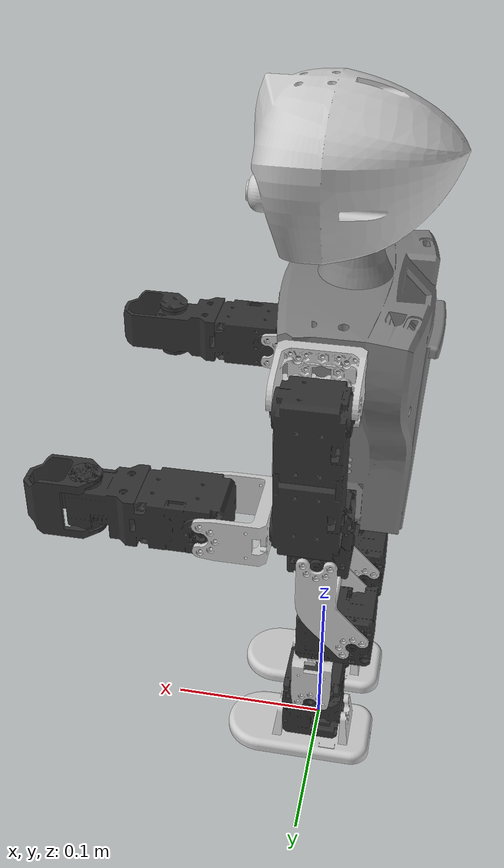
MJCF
<mujoco model="mh5_robot">
  <compiler angle="radian" meshdir="meshes/"/>

  <asset>
    <mesh name="chest_revH" content_type="model/stl" file="chest_revH.stl"/>
    <mesh name="2XL430_1_idle_revC" content_type="model/stl" file="2XL430_1_idle_revC.stl"/>
    <mesh name="head_revH" content_type="model/stl" file="head_revH.stl"/>
    <mesh name="frame04_revE" content_type="model/stl" file="frame04_revE.stl"/>
    <mesh name="upper_arm" content_type="model/stl" file="upper_arm.stl"/>
    <mesh name="frame02_revC" content_type="model/stl" file="frame02_revC.stl"/>
    <mesh name="left_lower_arm" content_type="model/stl" file="left_lower_arm.stl"/>
    <mesh name="gripper" content_type="model/stl" file="gripper.stl"/>
    <mesh name="right_lower_arm" content_type="model/stl" file="right_lower_arm.stl"/>
    <mesh name="2XL430_2_idles_revC" content_type="model/stl" file="2XL430_2_idles_revC.stl"/>
    <mesh name="thigh_revE" content_type="model/stl" file="thigh_revE.stl"/>
    <mesh name="foot_revH" content_type="model/stl" file="foot_revH.stl"/>
  </asset>

  <worldbody>
    <body name="chest" pos="0 0 0.203">
      <inertial pos="0 0 0" quat="0.707094 0.706321 0.022059 -0.0253348" mass="0.4" diaginertia="0.000956276 0.000635836 0.000597528"/>
      <joint name="chest_fixed" type="free" limited="false" actuatorfrclimited="false"/>
      <geom type="mesh" contype="0" conaffinity="0" group="1" density="0" mesh="chest_revH"/>
      <geom type="mesh" mesh="chest_revH"/>
      <body name="head_servo" pos="-0.007076 0 0.198">
        <inertial pos="0 0 0" quat="0.92388 0.000152211 1.80156e-05 0.382683" mass="0.098" diaginertia="2.7637e-05 2.6329e-05 1.9139e-05"/>
        <joint name="head_y" pos="0 0 0" axis="0 0 1" range="-1.5708 1.5708" actuatorfrcrange="-1 1"/>
        <geom quat="0 -0.707107 0 0.707107" type="mesh" contype="0" conaffinity="0" group="1" density="0" rgba="0.2 0.2 0.2 1" mesh="2XL430_1_idle_revC"/>
        <geom type="mesh" rgba="0.2 0.2 0.2 1" mesh="2XL430_1_idle_revC"/>
        <body name="head_frame" pos="0.024 0 0">
          <inertial pos="0 0 0" quat="0.49625 0.496429 -0.503588 0.503679" mass="0.090046" diaginertia="0.000215844 0.000188146 0.000158702"/>
          <joint name="head_p" pos="0 0 0" axis="0 -1 0" range="-0.349066 0.785398" actuatorfrcrange="-1 1"/>
          <geom type="mesh" contype="0" conaffinity="0" group="1" density="0" rgba="0.8 0.8 0.8 1" mesh="head_revH"/>
          <geom type="mesh" rgba="0.8 0.8 0.8 1" mesh="head_revH"/>
        </body>
      </body>
      <body name="left_shoulder_frame" pos="0 0.0685 0.11875" quat="0.5 0.5 -0.5 0.5">
        <inertial pos="0 0 0" quat="0.326569 0.326569 -0.627178 0.627178" mass="0.0083" diaginertia="3.85936e-06 3.00364e-06 1.666e-06"/>
        <joint name="l_sho_p" pos="0 0 0" axis="0 0 1" range="-1.5708 3.14159" actuatorfrcrange="-1 1"/>
        <geom type="mesh" contype="0" conaffinity="0" group="1" density="0" rgba="0.8 0.8 0.8 1" mesh="frame04_revE"/>
        <geom type="mesh" rgba="0.8 0.8 0.8 1" mesh="frame04_revE"/>
        <body name="left_upper_arm" pos="-0.008 0 -0.027" quat="0.5 -0.5 0.5 -0.5">
          <inertial pos="0 0 0" quat="0.707107 0.000170262 -0.000170262 0.707107" mass="0.115" diaginertia="9.2555e-05 8.9448e-05 1.78e-05"/>
          <joint name="l_sho_r" pos="0 0 0" axis="1 0 0" range="0 3.14159" actuatorfrcrange="-1 1"/>
          <geom type="mesh" contype="0" conaffinity="0" group="1" density="0" rgba="0.2 0.2 0.2 1" mesh="upper_arm"/>
          <geom type="mesh" rgba="0.2 0.2 0.2 1" mesh="upper_arm"/>
          <body name="left_elbow_frame" pos="0.019 0 -0.0705" quat="0.707107 0 -0.707107 0">
            <inertial pos="0 0 0" quat="0.707051 0.707051 0.00891213 -0.00891213" mass="0.0077" diaginertia="3.21728e-06 2.78072e-06 1.377e-06"/>
            <joint name="l_elb_r" pos="0 0 0" axis="0 0 1" range="-1.5708 1.5708" actuatorfrcrange="-1 1"/>
            <geom type="mesh" contype="0" conaffinity="0" group="1" density="0" rgba="0.8 0.8 0.8 1" mesh="frame02_revC"/>
            <geom type="mesh" rgba="0.8 0.8 0.8 1" mesh="frame02_revC"/>
            <body name="left_lower_arm" pos="0 0 -0.034" quat="0.707107 0 0.707107 0">
              <inertial pos="0 0 0" quat="0.708225 0.0254724 0.0248774 0.705088" mass="0.057" diaginertia="1.5234e-05 1.37453e-05 8.74367e-06"/>
              <joint name="l_elb_p" pos="0 0 0" axis="0 -1 0" range="-1.88496 1.88496" actuatorfrcrange="-1 1"/>
              <geom type="mesh" contype="0" conaffinity="0" group="1" density="0" rgba="0.2 0.2 0.2 1" mesh="left_lower_arm"/>
              <geom type="mesh" rgba="0.2 0.2 0.2 1" mesh="left_lower_arm"/>
              <body name="left_gripper" pos="0.06575 0 0">
                <inertial pos="0 0 0" quat="0.53152 0.53152 0.466354 0.466354" mass="0.004" diaginertia="1.26079e-06 7.94e-07 7.41212e-07"/>
                <joint name="l_gripper" pos="0 0 0" axis="0 0 1" range="0 1.5708" actuatorfrcrange="-1 1"/>
                <geom quat="0 1 0 0" type="mesh" contype="0" conaffinity="0" group="1" density="0" rgba="0.2 0.2 0.2 1" mesh="gripper"/>
                <geom type="mesh" rgba="0.2 0.2 0.2 1" mesh="gripper"/>
              </body>
            </body>
          </body>
        </body>
      </body>
      <body name="right_shoulder_frame" pos="0 -0.0685 0.11875" quat="0.5 -0.5 -0.5 -0.5">
        <inertial pos="0 0 0" quat="0.326569 0.326569 -0.627178 0.627178" mass="0.0083" diaginertia="3.85936e-06 3.00364e-06 1.666e-06"/>
        <joint name="r_sho_p" pos="0 0 0" axis="0 0 -1" range="-1.5708 3.14159" actuatorfrcrange="-1 1"/>
        <geom type="mesh" contype="0" conaffinity="0" group="1" density="0" rgba="0.8 0.8 0.8 1" mesh="frame04_revE"/>
        <geom type="mesh" rgba="0.8 0.8 0.8 1" mesh="frame04_revE"/>
        <body name="right_upper_arm" pos="-0.008 0 -0.027" quat="0.5 0.5 0.5 0.5">
          <inertial pos="0 0 0" quat="0.707107 0.000170262 -0.000170262 0.707107" mass="0.115" diaginertia="9.2555e-05 8.9448e-05 1.78e-05"/>
          <joint name="r_sho_r" pos="0 0 0" axis="-1 0 0" range="0 3.14159" actuatorfrcrange="-1 1"/>
          <geom type="mesh" contype="0" conaffinity="0" group="1" density="0" rgba="0.2 0.2 0.2 1" mesh="upper_arm"/>
          <geom type="mesh" rgba="0.2 0.2 0.2 1" mesh="upper_arm"/>
          <body name="right_elbow_frame" pos="0.019 0 -0.0705" quat="0.707107 0 -0.707107 0">
            <inertial pos="0 0 0" quat="0.707051 0.707051 0.00891213 -0.00891213" mass="0.0077" diaginertia="3.21728e-06 2.78072e-06 1.377e-06"/>
            <joint name="r_elb_r" pos="0 0 0" axis="0 0 -1" range="-1.5708 1.5708" actuatorfrcrange="-1 1"/>
            <geom type="mesh" contype="0" conaffinity="0" group="1" density="0" rgba="0.8 0.8 0.8 1" mesh="frame02_revC"/>
            <geom type="mesh" rgba="0.8 0.8 0.8 1" mesh="frame02_revC"/>
            <body name="right_lower_arm" pos="0 0 -0.034" quat="0.707107 0 0.707107 0">
              <inertial pos="0 0 0" quat="0.708225 0.0254724 0.0248774 0.705088" mass="0.057" diaginertia="1.5234e-05 1.37453e-05 8.74367e-06"/>
              <joint name="r_elb_p" pos="0 0 0" axis="0 -1 0" range="-1.88496 1.88496" actuatorfrcrange="-1 1"/>
              <geom type="mesh" contype="0" conaffinity="0" group="1" density="0" rgba="0.2 0.2 0.2 1" mesh="right_lower_arm"/>
              <geom type="mesh" rgba="0.2 0.2 0.2 1" mesh="right_lower_arm"/>
              <body name="right_gripper" pos="0.06575 0 0">
                <inertial pos="0 0 0" quat="0.53152 0.53152 0.466354 0.466354" mass="0.004" diaginertia="1.26079e-06 7.94e-07 7.41212e-07"/>
                <joint name="r_gripper" pos="0 0 0" axis="0 0 -1" range="0 1.5708" actuatorfrcrange="-1 1"/>
                <geom type="mesh" contype="0" conaffinity="0" group="1" density="0" rgba="0.2 0.2 0.2 1" mesh="gripper"/>
                <geom type="mesh" rgba="0.2 0.2 0.2 1" mesh="gripper"/>
              </body>
            </body>
          </body>
        </body>
      </body>
      <body name="left_hip_servo" pos="0 0.032 0">
        <inertial pos="0 0 0" quat="0.92388 0.000120368 9.48904e-05 0.382683" mass="0.098" diaginertia="2.7637e-05 2.6329e-05 1.9139e-05"/>
        <joint name="l_hip_r" pos="0 0 0" axis="1 0 0" range="-0.785398 2.35619" actuatorfrcrange="-1000 1000" damping="0.1"/>
        <geom type="mesh" contype="0" conaffinity="0" group="1" density="0" rgba="0.2 0.2 0.2 1" mesh="2XL430_2_idles_revC"/>
        <geom type="mesh" rgba="0.2 0.2 0.2 1" mesh="2XL430_2_idles_revC"/>
        <body name="left_thigh" pos="0 0 -0.024">
          <inertial pos="0 0 0" quat="0.696823 0.696823 0.120156 -0.120156" mass="0.016" diaginertia="8.90388e-06 6.15012e-06 5.236e-06"/>
          <joint name="l_hip_p" pos="0 0 0" axis="0 -1 0" range="-1.88496 1.88496" actuatorfrcrange="-1000 1000" damping="0.1"/>
          <geom type="mesh" contype="0" conaffinity="0" group="1" density="0" rgba="0.8 0.8 0.8 1" mesh="thigh_revE"/>
          <geom type="mesh" rgba="0.8 0.8 0.8 1" mesh="thigh_revE"/>
          <body name="left_knee_servo" pos="-0.024 0 -0.061" quat="0.707107 0 0.707107 0">
            <inertial pos="0 0 0" quat="0.92388 0.000152211 1.80156e-05 0.382683" mass="0.098" diaginertia="2.7637e-05 2.6329e-05 1.9139e-05"/>
            <joint name="l_kne_p" pos="0 0 0" axis="0 1 0" range="0 3.76991" actuatorfrcrange="-1000 1000" damping="0.1"/>
            <geom pos="0 0 0.024" type="mesh" contype="0" conaffinity="0" group="1" density="0" rgba="0.2 0.2 0.2 1" mesh="2XL430_1_idle_revC"/>
            <geom pos="0 0 0.024" type="mesh" rgba="0.2 0.2 0.2 1" mesh="2XL430_1_idle_revC"/>
            <body name="left_tibia" pos="0.019 0 0.024" quat="0.707107 0 -0.707107 0">
              <inertial pos="0 0 0" quat="0.707051 0.707051 0.00891213 -0.00891213" mass="0.0077" diaginertia="3.21728e-06 2.78072e-06 1.377e-06"/>
              <joint name="l_kne_y" pos="0 0 0" axis="0 0 1" range="-0.785398 0.785398" actuatorfrcrange="-1000 1000" damping="0.1"/>
              <geom type="mesh" contype="0" conaffinity="0" group="1" density="0" rgba="0.8 0.8 0.8 1" mesh="frame02_revC"/>
              <geom type="mesh" rgba="0.8 0.8 0.8 1" mesh="frame02_revC"/>
              <body name="left_ankle_servo" pos="0 0 -0.034" quat="0.707107 0 0 -0.707107">
                <inertial pos="0 0 0" quat="0.92388 0.000120368 9.48904e-05 0.382683" mass="0.098" diaginertia="2.7637e-05 2.6329e-05 1.9139e-05"/>
                <joint name="l_ank_p" pos="0 0 0" axis="1 0 0" range="-1.5708 2.01062" actuatorfrcrange="-1000 1000" damping="0.1"/>
                <geom type="mesh" contype="0" conaffinity="0" group="1" density="0" rgba="0.2 0.2 0.2 1" mesh="2XL430_2_idles_revC"/>
                <geom type="mesh" rgba="0.2 0.2 0.2 1" mesh="2XL430_2_idles_revC"/>
                <body name="left_foot" pos="0 0 -0.024" quat="0.707107 0 0 0.707107">
                  <inertial pos="0 0 0" quat="0 0.713063 0 0.7011" mass="0.038" diaginertia="2.66038e-05 2.2262e-05 6.44523e-06"/>
                  <joint name="l_ank_r" pos="0 0 0" axis="1 0 0" range="-1.5708 1.5708" actuatorfrcrange="-1000 1000" damping="0.1"/>
                  <geom type="mesh" contype="0" conaffinity="0" group="1" density="0" rgba="0.8 0.8 0.8 1" mesh="foot_revH"/>
                  <geom type="mesh" rgba="0.8 0.8 0.8 1" mesh="foot_revH"/>
                </body>
              </body>
            </body>
          </body>
        </body>
      </body>
      <body name="right_hip_servo" pos="0 -0.032 0">
        <inertial pos="0 0 0" quat="0.92388 0.000120368 9.48904e-05 0.382683" mass="0.098" diaginertia="2.7637e-05 2.6329e-05 1.9139e-05"/>
        <joint name="r_hip_r" pos="0 0 0" axis="-1 0 0" range="-0.785398 2.35619" actuatorfrcrange="-1000 1000" damping="0.1"/>
        <geom type="mesh" contype="0" conaffinity="0" group="1" density="0" rgba="0.2 0.2 0.2 1" mesh="2XL430_2_idles_revC"/>
        <geom type="mesh" rgba="0.2 0.2 0.2 1" mesh="2XL430_2_idles_revC"/>
        <body name="right_thigh" pos="0 0 -0.024">
          <inertial pos="0 0 0" quat="0.696823 0.696823 0.120156 -0.120156" mass="0.016" diaginertia="8.90388e-06 6.15012e-06 5.236e-06"/>
          <joint name="r_hip_p" pos="0 0 0" axis="0 -1 0" range="-1.88496 1.88496" actuatorfrcrange="-1000 1000" damping="0.1"/>
          <geom type="mesh" contype="0" conaffinity="0" group="1" density="0" rgba="0.8 0.8 0.8 1" mesh="thigh_revE"/>
          <geom type="mesh" rgba="0.8 0.8 0.8 1" mesh="thigh_revE"/>
          <body name="right_knee_servo" pos="-0.024 0 -0.061" quat="0.707107 0 0.707107 0">
            <inertial pos="0 0 0" quat="0.92388 0.000152211 1.80156e-05 0.382683" mass="0.098" diaginertia="2.7637e-05 2.6329e-05 1.9139e-05"/>
            <joint name="r_kne_p" pos="0 0 0" axis="0 1 0" range="0 3.76991" actuatorfrcrange="-1000 1000" damping="0.1"/>
            <geom pos="0 0 0.024" type="mesh" contype="0" conaffinity="0" group="1" density="0" rgba="0.2 0.2 0.2 1" mesh="2XL430_1_idle_revC"/>
            <geom pos="0 0 0.024" type="mesh" rgba="0.2 0.2 0.2 1" mesh="2XL430_1_idle_revC"/>
            <body name="right_tibia" pos="0.019 0 0.024" quat="0.707107 0 -0.707107 0">
              <inertial pos="0 0 0" quat="0.707051 0.707051 0.00891213 -0.00891213" mass="0.0077" diaginertia="3.21728e-06 2.78072e-06 1.377e-06"/>
              <joint name="r_kne_y" pos="0 0 0" axis="0 0 -1" range="-0.785398 0.785398" actuatorfrcrange="-1000 1000" damping="0.1"/>
              <geom type="mesh" contype="0" conaffinity="0" group="1" density="0" rgba="0.8 0.8 0.8 1" mesh="frame02_revC"/>
              <geom type="mesh" rgba="0.8 0.8 0.8 1" mesh="frame02_revC"/>
              <body name="right_ankle_servo" pos="0 0 -0.034" quat="0.707107 0 0 -0.707107">
                <inertial pos="0 0 0" quat="0.92388 0.000120368 9.48904e-05 0.382683" mass="0.098" diaginertia="2.7637e-05 2.6329e-05 1.9139e-05"/>
                <joint name="r_ank_p" pos="0 0 0" axis="1 0 0" range="-1.5708 2.01062" actuatorfrcrange="-1000 1000" damping="0.1"/>
                <geom type="mesh" contype="0" conaffinity="0" group="1" density="0" rgba="0.2 0.2 0.2 1" mesh="2XL430_2_idles_revC"/>
                <geom type="mesh" rgba="0.2 0.2 0.2 1" mesh="2XL430_2_idles_revC"/>
                <body name="right_foot" pos="0 0 -0.024" quat="0.707107 0 0 0.707107">
                  <inertial pos="0 0 0" quat="0 0.713063 0 0.7011" mass="0.038" diaginertia="2.66038e-05 2.2262e-05 6.44523e-06"/>
                  <joint name="r_ank_r" pos="0 0 0" axis="-1 0 0" range="-1.5708 1.5708" actuatorfrcrange="-1000 1000" damping="0.1"/>
                  <geom type="mesh" contype="0" conaffinity="0" group="1" density="0" rgba="0.8 0.8 0.8 1" mesh="foot_revH"/>
                  <geom type="mesh" rgba="0.8 0.8 0.8 1" mesh="foot_revH"/>
                </body>
              </body>
            </body>
          </body>
        </body>
      </body>
    </body>
  </worldbody>
</mujoco>
